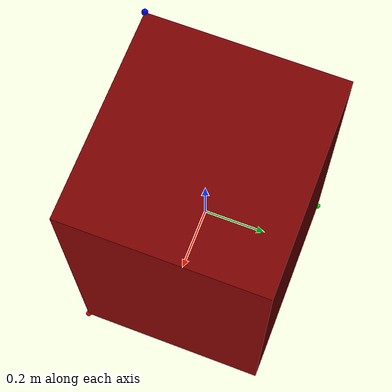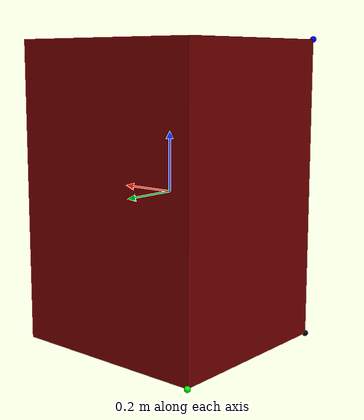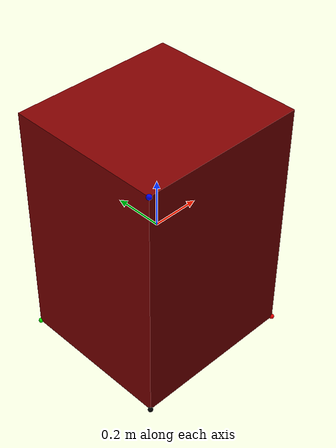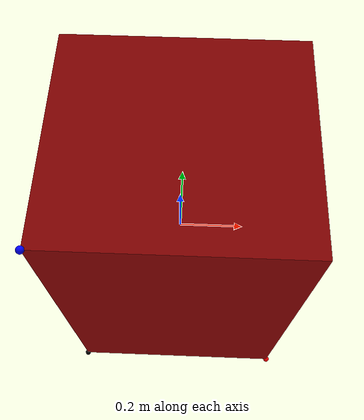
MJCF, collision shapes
<mujoco model="model">
  <asset>
    <material name="Steel" specular="0.5" shininess="0.429602173" rgba="0.233014 0.233014 0.233014 1.0"/>
    <material name="White_Ceramic" specular="0.5" shininess="0.745867798" rgba="0.774273 0.745509 0.723106 1.0"/>
    <material name="rubber" specular="0.5" shininess="0.42249996900000003" rgba="0.265530 0.313605 0.305268 1.0"/>
    <material name="wood" specular="0.5" shininess="0.10710742999999999" rgba="0.800000 0.800000 0.800000 1.0"/>
    <mesh file="visuals/model_0.obj" name="model_0_vis" scale="1 1 1"/>
    <mesh file="visuals/model_1.obj" name="model_1_vis" scale="1 1 1"/>
    <mesh file="visuals/model_2.obj" name="model_2_vis" scale="1 1 1"/>
    <mesh file="visuals/model_3.obj" name="model_3_vis" scale="1 1 1"/>
  </asset>
  <default>
    <default class="visual">
      <geom conaffinity="0" contype="0" group="1" type="mesh"/>
    </default>
    <default class="collision">
      <geom group="0" rgba="0.5 0 0 0.5"/>
    </default>
  </default>
  <worldbody>
    <body>
      <!-- exterior bounding box points -->
      <site rgba="0 0 0 1" size="0.01" pos="-0.3431880732252614 -0.3194923587852673 -0.49999999999999994" name="ext_p0"/>
      <site rgba="1 0 0 1" size="0.01" pos="0.3431880732252614 -0.3194923587852673 -0.49999999999999994" name="ext_px"/>
      <site rgba="0 1 0 1" size="0.01" pos="-0.3431880732252614 0.3194923587852673 -0.49999999999999994" name="ext_py"/>
      <site rgba="0 0 1 1" size="0.01" pos="-0.3431880732252614 -0.3194923587852673 0.49999999999999994" name="ext_pz"/>
      <!-- interior bounding box points -->
      <body name="object">
        <geom solimp="0.998 0.998 0.001" solref="0.001 1" density="100" friction="0.95 0.3 0.1" type="mesh" mesh="model_0_vis" material="White_Ceramic" class="visual"/>
        <geom solimp="0.998 0.998 0.001" solref="0.001 1" density="100" friction="0.95 0.3 0.1" type="mesh" mesh="model_1_vis" material="Steel" class="visual"/>
        <geom solimp="0.998 0.998 0.001" solref="0.001 1" density="100" friction="0.95 0.3 0.1" type="mesh" mesh="model_2_vis" material="wood" class="visual"/>
        <geom solimp="0.998 0.998 0.001" solref="0.001 1" density="100" friction="0.95 0.3 0.1" type="mesh" mesh="model_3_vis" material="rubber" class="visual"/>
        <geom class="collision" type="box" pos="0 0 0" size="0.3431880732252614 0.3194923587852673 0.49999999999999994"/>
      </body>
    </body>
  </worldbody>
</mujoco>
